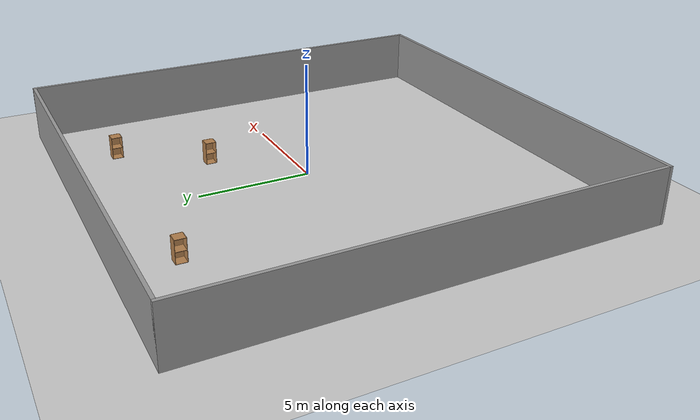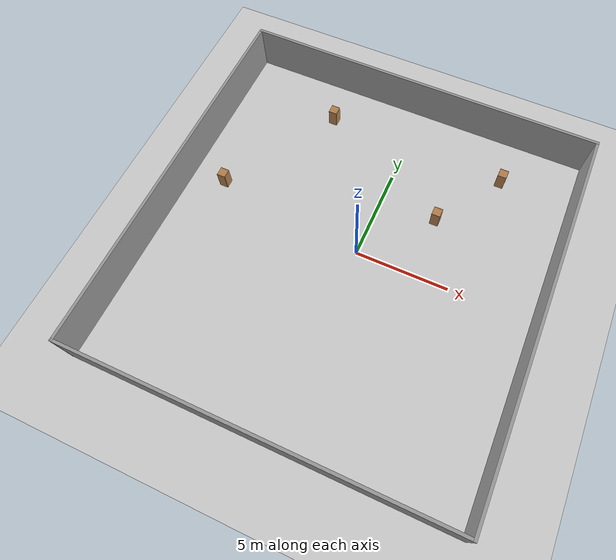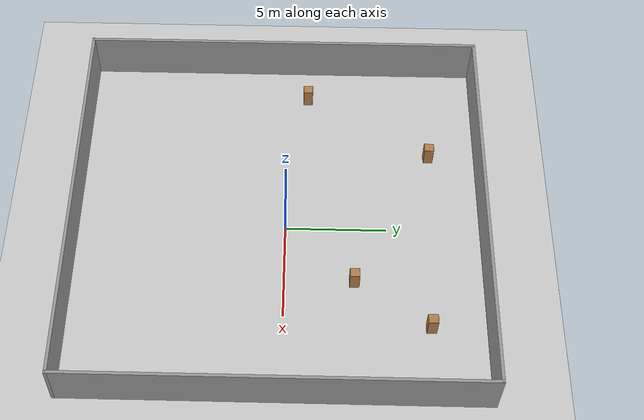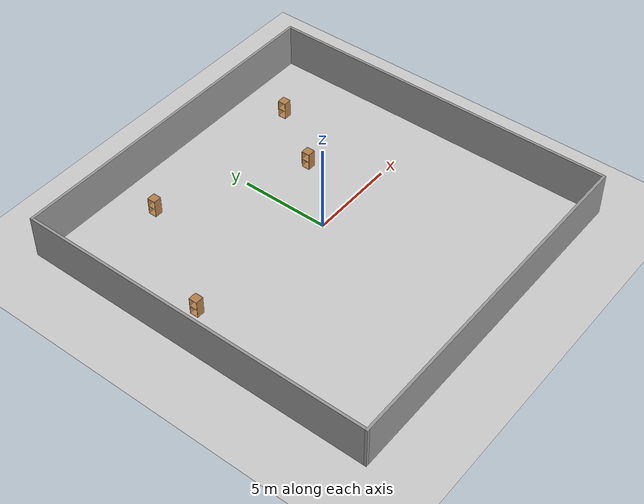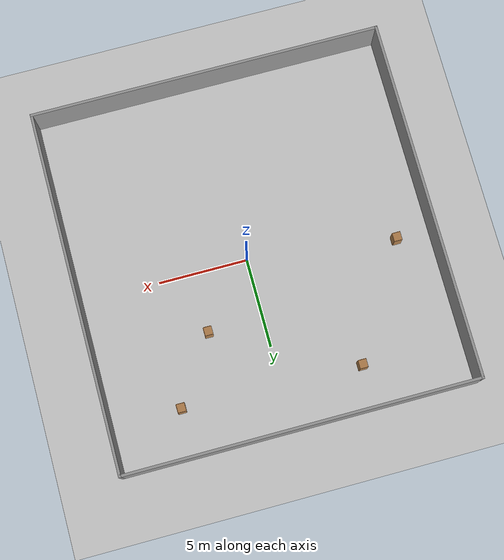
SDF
<sdf version="1.6">
 <world name="default">
  <model name="ground_plane">
   <static>1</static>
   <link name="link">
    <collision name="collision">
     <geometry><plane><normal>0 0 1</normal><size>100 100</size></plane></geometry>
     <surface><friction><ode><mu>100</mu><mu2>50</mu2></ode></friction></surface>
    </collision>
    <visual name="visual">
     <cast_shadows>0</cast_shadows>
     <geometry><plane><normal>0 0 1</normal><size>100 100</size></plane></geometry>
     <material>
      <script><uri>file://media/materials/scripts/gazebo.material</uri><name>Gazebo/Grey</name></script>
     </material>
    </visual>
   </link>
  </model>
  <model name="room">
   <pose>-0.399277 -0.326084 0 0 -0 0</pose>
   <link name="Wall_0">
    <collision name="Wall_0_Collision">
     <geometry><box><size>19.75 0.15 2.5</size></box></geometry>
     <pose>0 0 1.25 0 -0 0</pose>
    </collision>
    <visual name="Wall_0_Visual">
     <pose>0 0 1.25 0 -0 0</pose>
     <geometry><box><size>19.75 0.15 2.5</size></box></geometry>
     <material>
      <script><uri>file://media/materials/scripts/gazebo.material</uri><name>Gazebo/Grey</name></script>
      <ambient>1 1 1 1</ambient>
     </material>
     <meta><layer>0</layer></meta>
    </visual>
    <pose>-0 -10.05 0 0 -0 3.14159</pose>
   </link>
   <link name="Wall_2">
    <collision name="Wall_2_Collision">
     <geometry><box><size>20.25 0.15 2.5</size></box></geometry>
     <pose>0 0 1.25 0 -0 0</pose>
    </collision>
    <visual name="Wall_2_Visual">
     <pose>0 0 1.25 0 -0 0</pose>
     <geometry><box><size>20.25 0.15 2.5</size></box></geometry>
     <material>
      <script><uri>file://media/materials/scripts/gazebo.material</uri><name>Gazebo/Grey</name></script>
      <ambient>1 1 1 1</ambient>
     </material>
     <meta><layer>0</layer></meta>
    </visual>
    <pose>-9.8 0 0 0 -0 1.5708</pose>
   </link>
   <link name="Wall_3">
    <collision name="Wall_3_Collision">
     <geometry><box><size>19.75 0.15 2.5</size></box></geometry>
     <pose>0 0 1.25 0 -0 0</pose>
    </collision>
    <visual name="Wall_3_Visual">
     <pose>0 0 1.25 0 -0 0</pose>
     <geometry><box><size>19.75 0.15 2.5</size></box></geometry>
     <material>
      <script><uri>file://media/materials/scripts/gazebo.material</uri><name>Gazebo/Grey</name></script>
      <ambient>1 1 1 1</ambient>
     </material>
     <meta><layer>0</layer></meta>
    </visual>
    <pose>-0 10.05 0 0 -0 0</pose>
   </link>
   <link name="Wall_4">
    <collision name="Wall_4_Collision">
     <geometry><box><size>20.25 0.15 2.5</size></box></geometry>
     <pose>0 0 1.25 0 -0 0</pose>
    </collision>
    <visual name="Wall_4_Visual">
     <pose>0 0 1.25 0 -0 0</pose>
     <geometry><box><size>20.25 0.15 2.5</size></box></geometry>
     <material>
      <script><uri>file://media/materials/scripts/gazebo.material</uri><name>Gazebo/Grey</name></script>
      <ambient>1 1 1 1</ambient>
     </material>
     <meta><layer>0</layer></meta>
    </visual>
    <pose>9.8 0 0 0 -0 -1.5708</pose>
   </link>
   <static>1</static>
  </model>
  <model name="cabinet">
   <static>1</static>
   <link name="cabinet_bottom_plate">
    <inertial>
     <pose>0 0 -1 0 -0 0</pose>
     <inertia><ixx>2.05</ixx><ixy>0</ixy><ixz>0</ixz><iyy>2.05</iyy><iyz>0</iyz><izz>2.05</izz></inertia>
     <mass>25</mass>
    </inertial>
    <collision name="cabinet_bottom_plate_geom">
     <pose>0 0 0.01 0 -0 0</pose>
     <geometry><box><size>0.45 0.45 0.02</size></box></geometry>
    </collision>
    <visual name="cabinet_bottom_plate_geom_visual">
     <pose>0 0 0.01 0 -0 0</pose>
     <geometry><box><size>0.45 0.45 0.02</size></box></geometry>
     <material>
      <script><uri>file://media/materials/scripts/gazebo.material</uri><name>Gazebo/Wood</name></script>
     </material>
    </visual>
    <collision name="cabinet_bottom_plate_geom_cabinet_back_plate">
     <pose>0.235 0 0.51 0 -0 0</pose>
     <geometry><box><size>0.02 0.45 1.02</size></box></geometry>
    </collision>
    <visual name="cabinet_bottom_plate_geom_cabinet_back_plate_visual">
     <pose>0.235 0 0.51 0 -0 0</pose>
     <geometry><box><size>0.02 0.45 1.02</size></box></geometry>
     <material>
      <script><uri>file://media/materials/scripts/gazebo.material</uri><name>Gazebo/Wood</name></script>
     </material>
    </visual>
    <collision name="cabinet_bottom_plate_geom_cabinet_left_plate">
     <pose>0 0.235 0.51 0 -0 0</pose>
     <geometry><box><size>0.45 0.02 1.02</size></box></geometry>
    </collision>
    <visual name="cabinet_bottom_plate_geom_cabinet_left_plate_visual">
     <pose>0 0.235 0.51 0 -0 0</pose>
     <geometry><box><size>0.45 0.02 1.02</size></box></geometry>
     <material>
      <script><uri>file://media/materials/scripts/gazebo.material</uri><name>Gazebo/Wood</name></script>
     </material>
    </visual>
    <collision name="cabinet_bottom_plate_geom_cabinet_middle_plate">
     <pose>0 0 0.51 0 -0 0</pose>
     <geometry><box><size>0.45 0.45 0.02</size></box></geometry>
    </collision>
    <visual name="cabinet_bottom_plate_geom_cabinet_middle_plate_visual">
     <pose>0 0 0.51 0 -0 0</pose>
     <geometry><box><size>0.45 0.45 0.02</size></box></geometry>
     <material>
      <script><uri>file://media/materials/scripts/gazebo.material</uri><name>Gazebo/Wood</name></script>
     </material>
    </visual>
    <collision name="cabinet_bottom_plate_geom_cabinet_right_plate">
     <pose>0 -0.235 0.51 0 -0 0</pose>
     <geometry><box><size>0.45 0.02 1.02</size></box></geometry>
    </collision>
    <visual name="cabinet_bottom_plate_geom_cabinet_right_plate_visual">
     <pose>0 -0.235 0.51 0 -0 0</pose>
     <geometry><box><size>0.45 0.02 1.02</size></box></geometry>
     <material>
      <script><uri>file://media/materials/scripts/gazebo.material</uri><name>Gazebo/Wood</name></script>
     </material>
    </visual>
    <collision name="cabinet_bottom_plate_geom_cabinet_top_plate">
     <pose>0 0 1.01 0 -0 0</pose>
     <geometry><box><size>0.45 0.45 0.02</size></box></geometry>
    </collision>
    <visual name="cabinet_bottom_plate_geom_cabinet_top_plate_visual">
     <pose>0 0 1.01 0 -0 0</pose>
     <geometry><box><size>0.45 0.45 0.02</size></box></geometry>
     <material>
      <script><uri>file://media/materials/scripts/gazebo.material</uri><name>Gazebo/Wood</name></script>
     </material>
    </visual>
   </link>
   <pose>5.50844 7.01111 0 0 -0 0</pose>
  </model>
  <model name="cabinet_0">
   <static>1</static>
   <link name="cabinet_bottom_plate">
    <inertial>
     <pose>0 0 -1 0 -0 0</pose>
     <inertia><ixx>2.05</ixx><ixy>0</ixy><ixz>0</ixz><iyy>2.05</iyy><iyz>0</iyz><izz>2.05</izz></inertia>
     <mass>25</mass>
    </inertial>
    <collision name="cabinet_bottom_plate_geom">
     <pose>0 0 0.01 0 -0 0</pose>
     <geometry><box><size>0.45 0.45 0.02</size></box></geometry>
    </collision>
    <visual name="cabinet_bottom_plate_geom_visual">
     <pose>0 0 0.01 0 -0 0</pose>
     <geometry><box><size>0.45 0.45 0.02</size></box></geometry>
     <material>
      <script><uri>file://media/materials/scripts/gazebo.material</uri><name>Gazebo/Wood</name></script>
     </material>
    </visual>
    <collision name="cabinet_bottom_plate_geom_cabinet_back_plate">
     <pose>0.235 0 0.51 0 -0 0</pose>
     <geometry><box><size>0.02 0.45 1.02</size></box></geometry>
    </collision>
    <visual name="cabinet_bottom_plate_geom_cabinet_back_plate_visual">
     <pose>0.235 0 0.51 0 -0 0</pose>
     <geometry><box><size>0.02 0.45 1.02</size></box></geometry>
     <material>
      <script><uri>file://media/materials/scripts/gazebo.material</uri><name>Gazebo/Wood</name></script>
     </material>
    </visual>
    <collision name="cabinet_bottom_plate_geom_cabinet_left_plate">
     <pose>0 0.235 0.51 0 -0 0</pose>
     <geometry><box><size>0.45 0.02 1.02</size></box></geometry>
    </collision>
    <visual name="cabinet_bottom_plate_geom_cabinet_left_plate_visual">
     <pose>0 0.235 0.51 0 -0 0</pose>
     <geometry><box><size>0.45 0.02 1.02</size></box></geometry>
     <material>
      <script><uri>file://media/materials/scripts/gazebo.material</uri><name>Gazebo/Wood</name></script>
     </material>
    </visual>
    <collision name="cabinet_bottom_plate_geom_cabinet_middle_plate">
     <pose>0 0 0.51 0 -0 0</pose>
     <geometry><box><size>0.45 0.45 0.02</size></box></geometry>
    </collision>
    <visual name="cabinet_bottom_plate_geom_cabinet_middle_plate_visual">
     <pose>0 0 0.51 0 -0 0</pose>
     <geometry><box><size>0.45 0.45 0.02</size></box></geometry>
     <material>
      <script><uri>file://media/materials/scripts/gazebo.material</uri><name>Gazebo/Wood</name></script>
     </material>
    </visual>
    <collision name="cabinet_bottom_plate_geom_cabinet_right_plate">
     <pose>0 -0.235 0.51 0 -0 0</pose>
     <geometry><box><size>0.45 0.02 1.02</size></box></geometry>
    </collision>
    <visual name="cabinet_bottom_plate_geom_cabinet_right_plate_visual">
     <pose>0 -0.235 0.51 0 -0 0</pose>
     <geometry><box><size>0.45 0.02 1.02</size></box></geometry>
     <material>
      <script><uri>file://media/materials/scripts/gazebo.material</uri><name>Gazebo/Wood</name></script>
     </material>
    </visual>
    <collision name="cabinet_bottom_plate_geom_cabinet_top_plate">
     <pose>0 0 1.01 0 -0 0</pose>
     <geometry><box><size>0.45 0.45 0.02</size></box></geometry>
    </collision>
    <visual name="cabinet_bottom_plate_geom_cabinet_top_plate_visual">
     <pose>0 0 1.01 0 -0 0</pose>
     <geometry><box><size>0.45 0.45 0.02</size></box></geometry>
     <material>
      <script><uri>file://media/materials/scripts/gazebo.material</uri><name>Gazebo/Wood</name></script>
     </material>
    </visual>
   </link>
   <pose>3.0718 3.39266 0 0 -0 0</pose>
  </model>
  <model name="cabinet_2">
   <static>1</static>
   <link name="cabinet_bottom_plate">
    <inertial>
     <pose>0 0 -1 0 -0 0</pose>
     <inertia><ixx>2.05</ixx><ixy>0</ixy><ixz>0</ixz><iyy>2.05</iyy><iyz>0</iyz><izz>2.05</izz></inertia>
     <mass>25</mass>
    </inertial>
    <collision name="cabinet_bottom_plate_geom">
     <pose>0 0 0.01 0 -0 0</pose>
     <geometry><box><size>0.45 0.45 0.02</size></box></geometry>
    </collision>
    <visual name="cabinet_bottom_plate_geom_visual">
     <pose>0 0 0.01 0 -0 0</pose>
     <geometry><box><size>0.45 0.45 0.02</size></box></geometry>
     <material>
      <script><uri>file://media/materials/scripts/gazebo.material</uri><name>Gazebo/Wood</name></script>
     </material>
    </visual>
    <collision name="cabinet_bottom_plate_geom_cabinet_back_plate">
     <pose>0.235 0 0.51 0 -0 0</pose>
     <geometry><box><size>0.02 0.45 1.02</size></box></geometry>
    </collision>
    <visual name="cabinet_bottom_plate_geom_cabinet_back_plate_visual">
     <pose>0.235 0 0.51 0 -0 0</pose>
     <geometry><box><size>0.02 0.45 1.02</size></box></geometry>
     <material>
      <script><uri>file://media/materials/scripts/gazebo.material</uri><name>Gazebo/Wood</name></script>
     </material>
    </visual>
    <collision name="cabinet_bottom_plate_geom_cabinet_left_plate">
     <pose>0 0.235 0.51 0 -0 0</pose>
     <geometry><box><size>0.45 0.02 1.02</size></box></geometry>
    </collision>
    <visual name="cabinet_bottom_plate_geom_cabinet_left_plate_visual">
     <pose>0 0.235 0.51 0 -0 0</pose>
     <geometry><box><size>0.45 0.02 1.02</size></box></geometry>
     <material>
      <script><uri>file://media/materials/scripts/gazebo.material</uri><name>Gazebo/Wood</name></script>
     </material>
    </visual>
    <collision name="cabinet_bottom_plate_geom_cabinet_middle_plate">
     <pose>0 0 0.51 0 -0 0</pose>
     <geometry><box><size>0.45 0.45 0.02</size></box></geometry>
    </collision>
    <visual name="cabinet_bottom_plate_geom_cabinet_middle_plate_visual">
     <pose>0 0 0.51 0 -0 0</pose>
     <geometry><box><size>0.45 0.45 0.02</size></box></geometry>
     <material>
      <script><uri>file://media/materials/scripts/gazebo.material</uri><name>Gazebo/Wood</name></script>
     </material>
    </visual>
    <collision name="cabinet_bottom_plate_geom_cabinet_right_plate">
     <pose>0 -0.235 0.51 0 -0 0</pose>
     <geometry><box><size>0.45 0.02 1.02</size></box></geometry>
    </collision>
    <visual name="cabinet_bottom_plate_geom_cabinet_right_plate_visual">
     <pose>0 -0.235 0.51 0 -0 0</pose>
     <geometry><box><size>0.45 0.02 1.02</size></box></geometry>
     <material>
      <script><uri>file://media/materials/scripts/gazebo.material</uri><name>Gazebo/Wood</name></script>
     </material>
    </visual>
    <collision name="cabinet_bottom_plate_geom_cabinet_top_plate">
     <pose>0 0 1.01 0 -0 0</pose>
     <geometry><box><size>0.45 0.45 0.02</size></box></geometry>
    </collision>
    <visual name="cabinet_bottom_plate_geom_cabinet_top_plate_visual">
     <pose>0 0 1.01 0 -0 0</pose>
     <geometry><box><size>0.45 0.45 0.02</size></box></geometry>
     <material>
      <script><uri>file://media/materials/scripts/gazebo.material</uri><name>Gazebo/Wood</name></script>
     </material>
    </visual>
   </link>
   <pose>-4.50721 7.26979 0 0 -0 0</pose>
  </model>
  <model name="cabinet_3">
   <static>1</static>
   <link name="cabinet_bottom_plate">
    <inertial>
     <pose>0 0 -1 0 -0 0</pose>
     <inertia><ixx>2.05</ixx><ixy>0</ixy><ixz>0</ixz><iyy>2.05</iyy><iyz>0</iyz><izz>2.05</izz></inertia>
     <mass>25</mass>
    </inertial>
    <collision name="cabinet_bottom_plate_geom">
     <pose>0 0 0.01 0 -0 0</pose>
     <geometry><box><size>0.45 0.45 0.02</size></box></geometry>
    </collision>
    <visual name="cabinet_bottom_plate_geom_visual">
     <pose>0 0 0.01 0 -0 0</pose>
     <geometry><box><size>0.45 0.45 0.02</size></box></geometry>
     <material>
      <script><uri>file://media/materials/scripts/gazebo.material</uri><name>Gazebo/Wood</name></script>
     </material>
    </visual>
    <collision name="cabinet_bottom_plate_geom_cabinet_back_plate">
     <pose>0.235 0 0.51 0 -0 0</pose>
     <geometry><box><size>0.02 0.45 1.02</size></box></geometry>
    </collision>
    <visual name="cabinet_bottom_plate_geom_cabinet_back_plate_visual">
     <pose>0.235 0 0.51 0 -0 0</pose>
     <geometry><box><size>0.02 0.45 1.02</size></box></geometry>
     <material>
      <script><uri>file://media/materials/scripts/gazebo.material</uri><name>Gazebo/Wood</name></script>
     </material>
    </visual>
    <collision name="cabinet_bottom_plate_geom_cabinet_left_plate">
     <pose>0 0.235 0.51 0 -0 0</pose>
     <geometry><box><size>0.45 0.02 1.02</size></box></geometry>
    </collision>
    <visual name="cabinet_bottom_plate_geom_cabinet_left_plate_visual">
     <pose>0 0.235 0.51 0 -0 0</pose>
     <geometry><box><size>0.45 0.02 1.02</size></box></geometry>
     <material>
      <script><uri>file://media/materials/scripts/gazebo.material</uri><name>Gazebo/Wood</name></script>
     </material>
    </visual>
    <collision name="cabinet_bottom_plate_geom_cabinet_middle_plate">
     <pose>0 0 0.51 0 -0 0</pose>
     <geometry><box><size>0.45 0.45 0.02</size></box></geometry>
    </collision>
    <visual name="cabinet_bottom_plate_geom_cabinet_middle_plate_visual">
     <pose>0 0 0.51 0 -0 0</pose>
     <geometry><box><size>0.45 0.45 0.02</size></box></geometry>
     <material>
      <script><uri>file://media/materials/scripts/gazebo.material</uri><name>Gazebo/Wood</name></script>
     </material>
    </visual>
    <collision name="cabinet_bottom_plate_geom_cabinet_right_plate">
     <pose>0 -0.235 0.51 0 -0 0</pose>
     <geometry><box><size>0.45 0.02 1.02</size></box></geometry>
    </collision>
    <visual name="cabinet_bottom_plate_geom_cabinet_right_plate_visual">
     <pose>0 -0.235 0.51 0 -0 0</pose>
     <geometry><box><size>0.45 0.02 1.02</size></box></geometry>
     <material>
      <script><uri>file://media/materials/scripts/gazebo.material</uri><name>Gazebo/Wood</name></script>
     </material>
    </visual>
    <collision name="cabinet_bottom_plate_geom_cabinet_top_plate">
     <pose>0 0 1.01 0 -0 0</pose>
     <geometry><box><size>0.45 0.45 0.02</size></box></geometry>
    </collision>
    <visual name="cabinet_bottom_plate_geom_cabinet_top_plate_visual">
     <pose>0 0 1.01 0 -0 0</pose>
     <geometry><box><size>0.45 0.45 0.02</size></box></geometry>
     <material>
      <script><uri>file://media/materials/scripts/gazebo.material</uri><name>Gazebo/Wood</name></script>
     </material>
    </visual>
   </link>
   <pose>-8.23512 1.05227 0 0 -0 0</pose>
  </model>
 </world>
</sdf>
